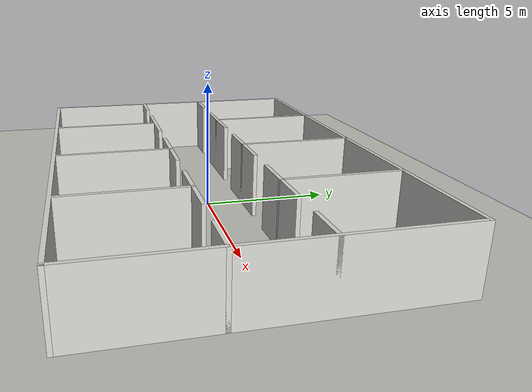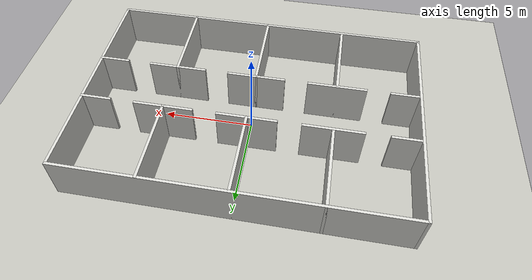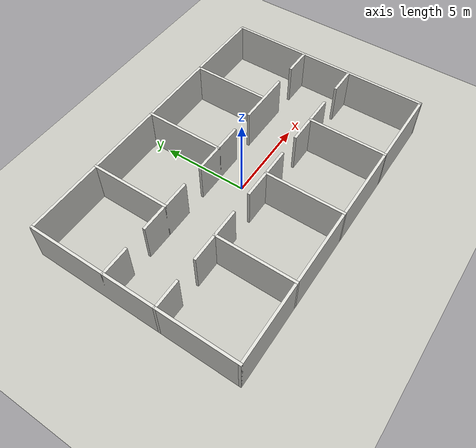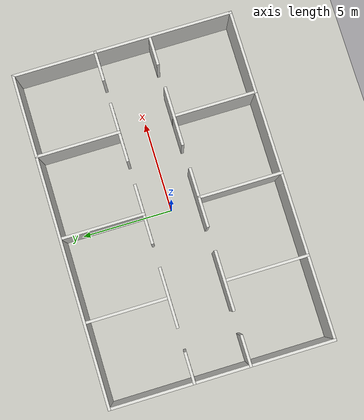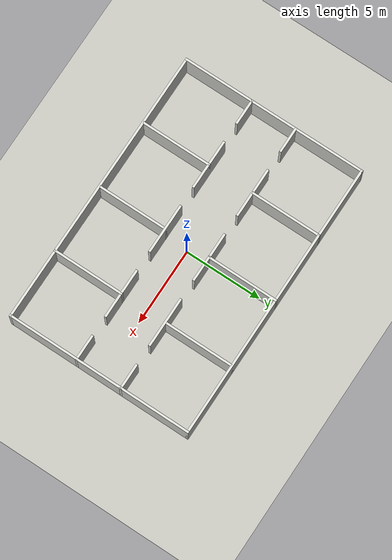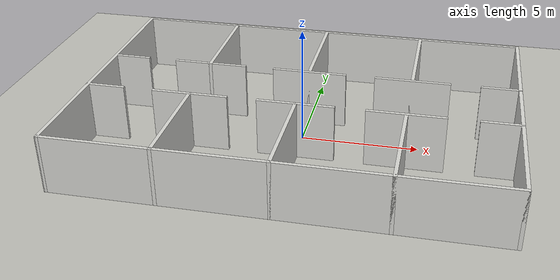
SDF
<sdf version="1.9">
 <world name="hospital">
  <physics name="1ms" type="ignored">
   <max_step_size>0.001</max_step_size>
   <real_time_factor>1.0</real_time_factor>
  </physics>
  <plugin filename="ignition-gazebo-physics-system" name="ignition::gazebo::systems::Physics"/>
  <plugin filename="ignition-gazebo-user-commands-system" name="ignition::gazebo::systems::UserCommands"/>
  <plugin filename="ignition-gazebo-scene-broadcaster-system" name="ignition::gazebo::systems::SceneBroadcaster"/>
  <plugin filename="ignition-gazebo-sensors-system" name="ignition::gazebo::systems::Sensors">
   <render_engine>ogre2</render_engine>
  </plugin>
  <plugin filename="ignition-gazebo-imu-system" name="ignition::gazebo::systems::Imu"/>
  <scene><ambient>0.6 0.6 0.6 1</ambient><background>0.7 0.75 0.8 1</background><shadows>true</shadows></scene>
  <light type="directional" name="sun">
   <pose>0 0 10 0 0 0</pose>
   <diffuse>1 1 1 1</diffuse>
   <specular>0.4 0.4 0.4 1</specular>
   <attenuation>
    <range>1000</range>
    <constant>0.9</constant>
    <linear>0.01</linear>
    <quadratic>0.001</quadratic>
   </attenuation>
   <direction>-0.5 0.1 -0.9</direction>
  </light>
  <model name="ground_plane">
   <static>true</static>
   <link name="link">
    <collision name="collision">
     <geometry><plane><normal>0 0 1</normal><size>60 60</size></plane></geometry>
     <surface><friction><ode><mu>1.0</mu><mu2>1.0</mu2></ode></friction></surface>
    </collision>
    <visual name="visual">
     <geometry><plane><normal>0 0 1</normal><size>60 60</size></plane></geometry>
     <material><ambient>0.75 0.75 0.72 1</ambient><diffuse>0.75 0.75 0.72 1</diffuse></material>
    </visual>
   </link>
  </model>
  <model name="walls">
   <static>true</static>
   <link name="wall_0">
    <pose>0.0000 -6.0000 1.2500 0 0 0.000000</pose>
    <collision name="collision"><geometry><box><size>18.1500 0.15 2.5</size></box></geometry></collision>
    <visual name="visual">
     <geometry><box><size>18.1500 0.15 2.5</size></box></geometry>
     <material><ambient>0.85 0.85 0.83 1</ambient><diffuse>0.85 0.85 0.83 1</diffuse></material>
    </visual>
   </link>
   <link name="wall_1">
    <pose>9.0000 0.0000 1.2500 0 0 1.570796</pose>
    <collision name="collision"><geometry><box><size>12.1500 0.15 2.5</size></box></geometry></collision>
    <visual name="visual">
     <geometry><box><size>12.1500 0.15 2.5</size></box></geometry>
     <material><ambient>0.85 0.85 0.83 1</ambient><diffuse>0.85 0.85 0.83 1</diffuse></material>
    </visual>
   </link>
   <link name="wall_2">
    <pose>0.0000 6.0000 1.2500 0 0 3.141593</pose>
    <collision name="collision"><geometry><box><size>18.1500 0.15 2.5</size></box></geometry></collision>
    <visual name="visual">
     <geometry><box><size>18.1500 0.15 2.5</size></box></geometry>
     <material><ambient>0.85 0.85 0.83 1</ambient><diffuse>0.85 0.85 0.83 1</diffuse></material>
    </visual>
   </link>
   <link name="wall_3">
    <pose>-9.0000 0.0000 1.2500 0 0 -1.570796</pose>
    <collision name="collision"><geometry><box><size>12.1500 0.15 2.5</size></box></geometry></collision>
    <visual name="visual">
     <geometry><box><size>12.1500 0.15 2.5</size></box></geometry>
     <material><ambient>0.85 0.85 0.83 1</ambient><diffuse>0.85 0.85 0.83 1</diffuse></material>
    </visual>
   </link>
   <link name="wall_4">
    <pose>-8.2250 1.5000 1.2500 0 0 0.000000</pose>
    <collision name="collision"><geometry><box><size>1.7000 0.15 2.5</size></box></geometry></collision>
    <visual name="visual">
     <geometry><box><size>1.7000 0.15 2.5</size></box></geometry>
     <material><ambient>0.85 0.85 0.83 1</ambient><diffuse>0.85 0.85 0.83 1</diffuse></material>
    </visual>
   </link>
   <link name="wall_5">
    <pose>-4.5000 1.5000 1.2500 0 0 0.000000</pose>
    <collision name="collision"><geometry><box><size>3.2500 0.15 2.5</size></box></geometry></collision>
    <visual name="visual">
     <geometry><box><size>3.2500 0.15 2.5</size></box></geometry>
     <material><ambient>0.85 0.85 0.83 1</ambient><diffuse>0.85 0.85 0.83 1</diffuse></material>
    </visual>
   </link>
   <link name="wall_6">
    <pose>0.0000 1.5000 1.2500 0 0 0.000000</pose>
    <collision name="collision"><geometry><box><size>3.2500 0.15 2.5</size></box></geometry></collision>
    <visual name="visual">
     <geometry><box><size>3.2500 0.15 2.5</size></box></geometry>
     <material><ambient>0.85 0.85 0.83 1</ambient><diffuse>0.85 0.85 0.83 1</diffuse></material>
    </visual>
   </link>
   <link name="wall_7">
    <pose>4.5000 1.5000 1.2500 0 0 0.000000</pose>
    <collision name="collision"><geometry><box><size>3.2500 0.15 2.5</size></box></geometry></collision>
    <visual name="visual">
     <geometry><box><size>3.2500 0.15 2.5</size></box></geometry>
     <material><ambient>0.85 0.85 0.83 1</ambient><diffuse>0.85 0.85 0.83 1</diffuse></material>
    </visual>
   </link>
   <link name="wall_8">
    <pose>8.2250 1.5000 1.2500 0 0 0.000000</pose>
    <collision name="collision"><geometry><box><size>1.7000 0.15 2.5</size></box></geometry></collision>
    <visual name="visual">
     <geometry><box><size>1.7000 0.15 2.5</size></box></geometry>
     <material><ambient>0.85 0.85 0.83 1</ambient><diffuse>0.85 0.85 0.83 1</diffuse></material>
    </visual>
   </link>
   <link name="wall_9">
    <pose>-8.2250 -1.5000 1.2500 0 0 0.000000</pose>
    <collision name="collision"><geometry><box><size>1.7000 0.15 2.5</size></box></geometry></collision>
    <visual name="visual">
     <geometry><box><size>1.7000 0.15 2.5</size></box></geometry>
     <material><ambient>0.85 0.85 0.83 1</ambient><diffuse>0.85 0.85 0.83 1</diffuse></material>
    </visual>
   </link>
   <link name="wall_10">
    <pose>-4.5000 -1.5000 1.2500 0 0 0.000000</pose>
    <collision name="collision"><geometry><box><size>3.2500 0.15 2.5</size></box></geometry></collision>
    <visual name="visual">
     <geometry><box><size>3.2500 0.15 2.5</size></box></geometry>
     <material><ambient>0.85 0.85 0.83 1</ambient><diffuse>0.85 0.85 0.83 1</diffuse></material>
    </visual>
   </link>
   <link name="wall_11">
    <pose>0.0000 -1.5000 1.2500 0 0 0.000000</pose>
    <collision name="collision"><geometry><box><size>3.2500 0.15 2.5</size></box></geometry></collision>
    <visual name="visual">
     <geometry><box><size>3.2500 0.15 2.5</size></box></geometry>
     <material><ambient>0.85 0.85 0.83 1</ambient><diffuse>0.85 0.85 0.83 1</diffuse></material>
    </visual>
   </link>
   <link name="wall_12">
    <pose>4.5000 -1.5000 1.2500 0 0 0.000000</pose>
    <collision name="collision"><geometry><box><size>3.2500 0.15 2.5</size></box></geometry></collision>
    <visual name="visual">
     <geometry><box><size>3.2500 0.15 2.5</size></box></geometry>
     <material><ambient>0.85 0.85 0.83 1</ambient><diffuse>0.85 0.85 0.83 1</diffuse></material>
    </visual>
   </link>
   <link name="wall_13">
    <pose>8.2250 -1.5000 1.2500 0 0 0.000000</pose>
    <collision name="collision"><geometry><box><size>1.7000 0.15 2.5</size></box></geometry></collision>
    <visual name="visual">
     <geometry><box><size>1.7000 0.15 2.5</size></box></geometry>
     <material><ambient>0.85 0.85 0.83 1</ambient><diffuse>0.85 0.85 0.83 1</diffuse></material>
    </visual>
   </link>
   <link name="wall_14">
    <pose>-4.5000 3.7500 1.2500 0 0 1.570796</pose>
    <collision name="collision"><geometry><box><size>4.6500 0.15 2.5</size></box></geometry></collision>
    <visual name="visual">
     <geometry><box><size>4.6500 0.15 2.5</size></box></geometry>
     <material><ambient>0.85 0.85 0.83 1</ambient><diffuse>0.85 0.85 0.83 1</diffuse></material>
    </visual>
   </link>
   <link name="wall_15">
    <pose>0.0000 3.7500 1.2500 0 0 1.570796</pose>
    <collision name="collision"><geometry><box><size>4.6500 0.15 2.5</size></box></geometry></collision>
    <visual name="visual">
     <geometry><box><size>4.6500 0.15 2.5</size></box></geometry>
     <material><ambient>0.85 0.85 0.83 1</ambient><diffuse>0.85 0.85 0.83 1</diffuse></material>
    </visual>
   </link>
   <link name="wall_16">
    <pose>4.5000 3.7500 1.2500 0 0 1.570796</pose>
    <collision name="collision"><geometry><box><size>4.6500 0.15 2.5</size></box></geometry></collision>
    <visual name="visual">
     <geometry><box><size>4.6500 0.15 2.5</size></box></geometry>
     <material><ambient>0.85 0.85 0.83 1</ambient><diffuse>0.85 0.85 0.83 1</diffuse></material>
    </visual>
   </link>
   <link name="wall_17">
    <pose>-4.5000 -3.7500 1.2500 0 0 -1.570796</pose>
    <collision name="collision"><geometry><box><size>4.6500 0.15 2.5</size></box></geometry></collision>
    <visual name="visual">
     <geometry><box><size>4.6500 0.15 2.5</size></box></geometry>
     <material><ambient>0.85 0.85 0.83 1</ambient><diffuse>0.85 0.85 0.83 1</diffuse></material>
    </visual>
   </link>
   <link name="wall_18">
    <pose>0.0000 -3.7500 1.2500 0 0 -1.570796</pose>
    <collision name="collision"><geometry><box><size>4.6500 0.15 2.5</size></box></geometry></collision>
    <visual name="visual">
     <geometry><box><size>4.6500 0.15 2.5</size></box></geometry>
     <material><ambient>0.85 0.85 0.83 1</ambient><diffuse>0.85 0.85 0.83 1</diffuse></material>
    </visual>
   </link>
   <link name="wall_19">
    <pose>4.5000 -3.7500 1.2500 0 0 -1.570796</pose>
    <collision name="collision"><geometry><box><size>4.6500 0.15 2.5</size></box></geometry></collision>
    <visual name="visual">
     <geometry><box><size>4.6500 0.15 2.5</size></box></geometry>
     <material><ambient>0.85 0.85 0.83 1</ambient><diffuse>0.85 0.85 0.83 1</diffuse></material>
    </visual>
   </link>
  </model>
 </world>
</sdf>
